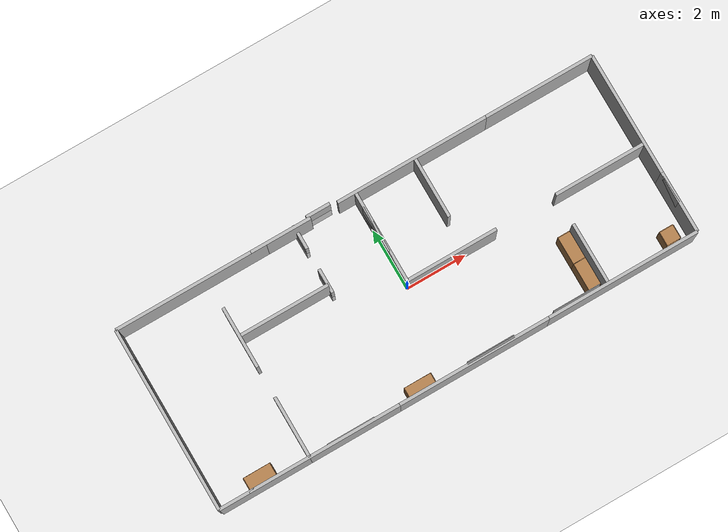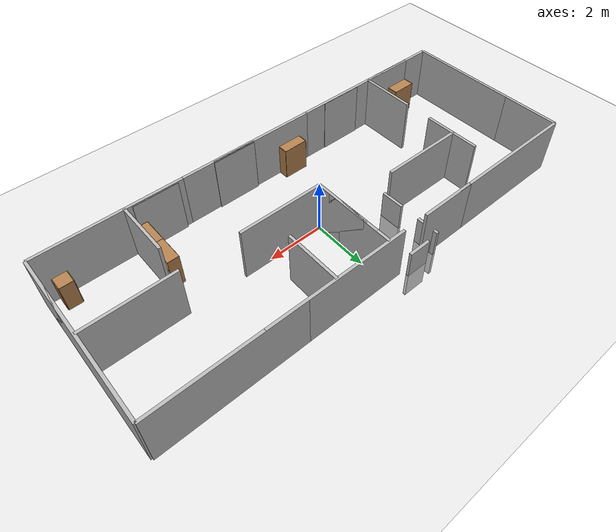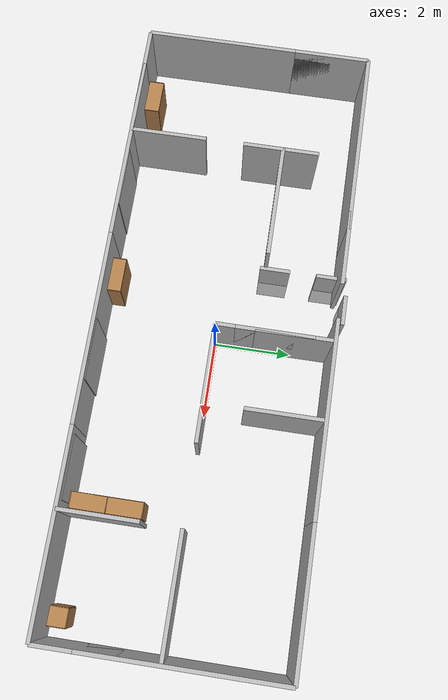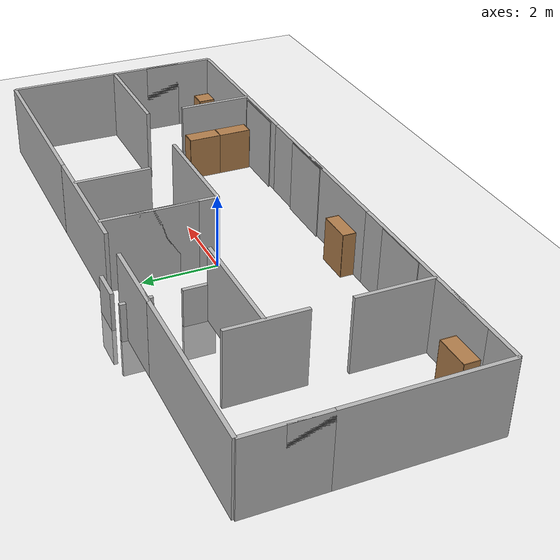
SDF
<sdf version="1.7">
 <world name="default">
  <light name="sun" type="directional">
   <pose>0 0 10 0 -0 0</pose>
   <diffuse>0.8 0.8 0.8 1</diffuse>
   <specular>0.2 0.2 0.2 1</specular>
   <attenuation>
    <range>1000</range>
    <constant>0.9</constant>
    <linear>0.01</linear>
    <quadratic>0.001</quadratic>
   </attenuation>
   <direction>-0.5 0.1 -0.9</direction>
   <spot><inner_angle>0</inner_angle><outer_angle>0</outer_angle><falloff>0</falloff></spot>
  </light>
  <model name="ground_plane">
   <static>1</static>
   <link name="link">
    <collision name="collision">
     <geometry><plane><normal>0 0 1</normal><size>100 100</size></plane></geometry>
     <surface>
      <contact><collide_bitmask>65535</collide_bitmask></contact>
      <friction><ode><mu>100</mu><mu2>50</mu2></ode></friction>
     </surface>
    </collision>
    <visual name="visual">
     <cast_shadows>0</cast_shadows>
     <geometry><plane><normal>0 0 1</normal><size>1 1</size></plane></geometry>
     <material>
      <script><uri>file://media/materials/scripts/gazebo.material</uri><name>Gazebo/Grey</name></script>
     </material>
    </visual>
   </link>
  </model>
  <gravity>0 0 -9.8</gravity>
  <magnetic_field>6e-06 2.3e-05 -4.2e-05</magnetic_field>
  <atmosphere type="adiabatic"/>
  <physics type="ode">
   <max_step_size>0.001</max_step_size>
   <real_time_factor>1</real_time_factor>
   <real_time_update_rate>1000</real_time_update_rate>
  </physics>
  <scene><ambient>0.4 0.4 0.4 1</ambient><background>0.7 0.7 0.7 1</background><shadows>1</shadows></scene>
  <audio><device>default</device></audio>
  <spherical_coordinates>
   <surface_model>EARTH_WGS84</surface_model>
   <latitude_deg>0</latitude_deg>
   <longitude_deg>0</longitude_deg>
   <elevation>0</elevation>
   <heading_deg>0</heading_deg>
  </spherical_coordinates>
  <model name="Bookshelf">
   <static>1</static>
   <link name="link">
    <inertial><mass>1</mass></inertial>
    <collision name="back">
     <pose>0 0.005 0.6 0 -0 0</pose>
     <geometry><box><size>0.9 0.01 1.2</size></box></geometry>
    </collision>
    <visual name="visual1">
     <pose>0 0.005 0.6 0 -0 0</pose>
     <geometry><box><size>0.9 0.01 1.2</size></box></geometry>
     <material>
      <diffuse>1 1 1 1</diffuse>
      <script><uri>file://media/materials/scripts/gazebo.material</uri><name>Gazebo/Wood</name></script>
      <pbr>
       <metal>
        <albedo_map>https://fuel.ignitionrobotics.org/1.0/openrobotics/models/bookshelf/3/files/bookshelf_diffuse.jpg</albedo_map>
       </metal>
      </pbr>
     </material>
    </visual>
    <collision name="left_side">
     <pose>0.45 -0.195 0.6 0 -0 0</pose>
     <geometry><box><size>0.02 0.4 1.2</size></box></geometry>
    </collision>
    <visual name="visual2">
     <pose>0.45 -0.195 0.6 0 -0 0</pose>
     <geometry><box><size>0.02 0.4 1.2</size></box></geometry>
     <material>
      <diffuse>1 1 1 1</diffuse>
      <script><uri>file://media/materials/scripts/gazebo.material</uri><name>Gazebo/Wood</name></script>
      <pbr>
       <metal>
        <albedo_map>https://fuel.ignitionrobotics.org/1.0/openrobotics/models/bookshelf/3/files/bookshelf_diffuse.jpg</albedo_map>
       </metal>
      </pbr>
     </material>
    </visual>
    <collision name="right_side">
     <pose>-0.45 -0.195 0.6 0 -0 0</pose>
     <geometry><box><size>0.02 0.4 1.2</size></box></geometry>
    </collision>
    <visual name="visual3">
     <pose>-0.45 -0.195 0.6 0 -0 0</pose>
     <geometry><box><size>0.02 0.4 1.2</size></box></geometry>
     <material>
      <diffuse>1 1 1 1</diffuse>
      <script><uri>file://media/materials/scripts/gazebo.material</uri><name>Gazebo/Wood</name></script>
      <pbr>
       <metal>
        <albedo_map>https://fuel.ignitionrobotics.org/1.0/openrobotics/models/bookshelf/3/files/bookshelf_diffuse.jpg</albedo_map>
       </metal>
      </pbr>
     </material>
    </visual>
    <collision name="bottom">
     <pose>0 -0.195 0.03 0 -0 0</pose>
     <geometry><box><size>0.88 0.4 0.06</size></box></geometry>
    </collision>
    <visual name="visual4">
     <pose>0 -0.195 0.03 0 -0 0</pose>
     <geometry><box><size>0.88 0.4 0.06</size></box></geometry>
     <material>
      <diffuse>1 1 1 1</diffuse>
      <script><uri>file://media/materials/scripts/gazebo.material</uri><name>Gazebo/Wood</name></script>
      <pbr>
       <metal>
        <albedo_map>https://fuel.ignitionrobotics.org/1.0/openrobotics/models/bookshelf/3/files/bookshelf_diffuse.jpg</albedo_map>
       </metal>
      </pbr>
     </material>
    </visual>
    <collision name="top">
     <pose>0 -0.195 1.19 0 -0 0</pose>
     <geometry><box><size>0.88 0.4 0.02</size></box></geometry>
    </collision>
    <visual name="visual5">
     <pose>0 -0.195 1.19 0 -0 0</pose>
     <geometry><box><size>0.88 0.4 0.02</size></box></geometry>
     <material>
      <diffuse>1 1 1 1</diffuse>
      <script><uri>file://media/materials/scripts/gazebo.material</uri><name>Gazebo/Wood</name></script>
      <pbr>
       <metal>
        <albedo_map>https://fuel.ignitionrobotics.org/1.0/openrobotics/models/bookshelf/3/files/bookshelf_diffuse.jpg</albedo_map>
       </metal>
      </pbr>
     </material>
    </visual>
    <collision name="low_shelf">
     <pose>0 -0.195 0.43 0 -0 0</pose>
     <geometry><box><size>0.88 0.4 0.02</size></box></geometry>
    </collision>
    <visual name="visual6">
     <pose>0 -0.195 0.43 0 -0 0</pose>
     <geometry><box><size>0.88 0.4 0.02</size></box></geometry>
     <material>
      <diffuse>1 1 1 1</diffuse>
      <script><uri>file://media/materials/scripts/gazebo.material</uri><name>Gazebo/Wood</name></script>
      <pbr>
       <metal>
        <albedo_map>https://fuel.ignitionrobotics.org/1.0/openrobotics/models/bookshelf/3/files/bookshelf_diffuse.jpg</albedo_map>
       </metal>
      </pbr>
     </material>
    </visual>
    <collision name="high_shelf">
     <pose>0 -0.195 0.8 0 -0 0</pose>
     <geometry><box><size>0.88 0.4 0.02</size></box></geometry>
    </collision>
    <visual name="visual7">
     <pose>0 -0.195 0.8 0 -0 0</pose>
     <geometry><box><size>0.88 0.4 0.02</size></box></geometry>
     <material>
      <diffuse>1 1 1 1</diffuse>
      <script><uri>file://media/materials/scripts/gazebo.material</uri><name>Gazebo/Wood</name></script>
      <pbr>
       <metal>
        <albedo_map>https://fuel.ignitionrobotics.org/1.0/openrobotics/models/bookshelf/3/files/bookshelf_diffuse.jpg</albedo_map>
       </metal>
      </pbr>
     </material>
    </visual>
   </link>
   <pose>4.5 -1.5 0 0 -0 1.5707</pose>
  </model>
  <model name="cabinet">
   <static>1</static>
   <link name="cabinet_bottom_plate">
    <inertial>
     <pose>0 0 -1 0 -0 0</pose>
     <inertia><ixx>2.05</ixx><ixy>0</ixy><ixz>0</ixz><iyy>2.05</iyy><iyz>0</iyz><izz>2.05</izz></inertia>
     <mass>25</mass>
    </inertial>
    <collision name="cabinet_bottom_plate_geom">
     <pose>0 0 0.01 0 -0 0</pose>
     <geometry><box><size>0.45 0.45 0.02</size></box></geometry>
    </collision>
    <visual name="cabinet_bottom_plate_geom_visual">
     <pose>0 0 0.01 0 -0 0</pose>
     <geometry><box><size>0.45 0.45 0.02</size></box></geometry>
     <material>
      <script><uri>file://media/materials/scripts/gazebo.material</uri><name>Gazebo/Wood</name></script>
     </material>
    </visual>
    <collision name="cabinet_bottom_plate_geom_cabinet_back_plate">
     <pose>0.235 0 0.51 0 -0 0</pose>
     <geometry><box><size>0.02 0.45 1.02</size></box></geometry>
    </collision>
    <visual name="cabinet_bottom_plate_geom_cabinet_back_plate_visual">
     <pose>0.235 0 0.51 0 -0 0</pose>
     <geometry><box><size>0.02 0.45 1.02</size></box></geometry>
     <material>
      <script><uri>file://media/materials/scripts/gazebo.material</uri><name>Gazebo/Wood</name></script>
     </material>
    </visual>
    <collision name="cabinet_bottom_plate_geom_cabinet_left_plate">
     <pose>0 0.235 0.51 0 -0 0</pose>
     <geometry><box><size>0.45 0.02 1.02</size></box></geometry>
    </collision>
    <visual name="cabinet_bottom_plate_geom_cabinet_left_plate_visual">
     <pose>0 0.235 0.51 0 -0 0</pose>
     <geometry><box><size>0.45 0.02 1.02</size></box></geometry>
     <material>
      <script><uri>file://media/materials/scripts/gazebo.material</uri><name>Gazebo/Wood</name></script>
     </material>
    </visual>
    <collision name="cabinet_bottom_plate_geom_cabinet_middle_plate">
     <pose>0 0 0.51 0 -0 0</pose>
     <geometry><box><size>0.45 0.45 0.02</size></box></geometry>
    </collision>
    <visual name="cabinet_bottom_plate_geom_cabinet_middle_plate_visual">
     <pose>0 0 0.51 0 -0 0</pose>
     <geometry><box><size>0.45 0.45 0.02</size></box></geometry>
     <material>
      <script><uri>file://media/materials/scripts/gazebo.material</uri><name>Gazebo/Wood</name></script>
     </material>
    </visual>
    <collision name="cabinet_bottom_plate_geom_cabinet_right_plate">
     <pose>0 -0.235 0.51 0 -0 0</pose>
     <geometry><box><size>0.45 0.02 1.02</size></box></geometry>
    </collision>
    <visual name="cabinet_bottom_plate_geom_cabinet_right_plate_visual">
     <pose>0 -0.235 0.51 0 -0 0</pose>
     <geometry><box><size>0.45 0.02 1.02</size></box></geometry>
     <material>
      <script><uri>file://media/materials/scripts/gazebo.material</uri><name>Gazebo/Wood</name></script>
     </material>
    </visual>
    <collision name="cabinet_bottom_plate_geom_cabinet_top_plate">
     <pose>0 0 1.01 0 -0 0</pose>
     <geometry><box><size>0.45 0.45 0.02</size></box></geometry>
    </collision>
    <visual name="cabinet_bottom_plate_geom_cabinet_top_plate_visual">
     <pose>0 0 1.01 0 -0 0</pose>
     <geometry><box><size>0.45 0.45 0.02</size></box></geometry>
     <material>
      <script><uri>file://media/materials/scripts/gazebo.material</uri><name>Gazebo/Wood</name></script>
     </material>
    </visual>
   </link>
   <pose>7.39856 -2.62744 0 0 -0 1.5707</pose>
  </model>
  <model name="living_room"><static>0</static><pose>-1.83596 1.40391 0 0 -0 0</pose></model>
  <model name="room_wall_2x5_0">
   <link name="link">
    <visual name="visual">
     <geometry><box><size>0.1 5 2</size></box></geometry>
     <material>
      <script>
       <uri>https://fuel.ignitionrobotics.org/1.0/makerspet/models/room_wall_2x5m/1/files/material/script</uri>
       <uri>https://fuel.ignitionrobotics.org/1.0/makerspet/models/room_wall_2x5m/1/files/material/textures</uri>
       <name>Custom/room_wall_2x5</name>
      </script>
     </material>
    </visual>
    <collision name="collision"><geometry><box><size>0.1 5 2</size></box></geometry></collision>
   </link>
   <static>1</static>
   <pose>8 0.5 1 0 -0 0</pose>
  </model>
  <model name="room_wall_2x5_1">
   <link name="link">
    <visual name="visual">
     <geometry><box><size>0.1 5 2</size></box></geometry>
     <material>
      <script>
       <uri>https://fuel.ignitionrobotics.org/1.0/makerspet/models/room_wall_2x5m/1/files/material/script</uri>
       <uri>https://fuel.ignitionrobotics.org/1.0/makerspet/models/room_wall_2x5m/1/files/material/textures</uri>
       <name>Custom/room_wall_2x5</name>
      </script>
     </material>
    </visual>
    <collision name="collision"><geometry><box><size>0.1 5 2</size></box></geometry></collision>
   </link>
   <static>1</static>
   <pose>5.5 -3 1 0 -0 1.5707</pose>
  </model>
  <model name="window_curtains_0">
   <link name="link">
    <visual name="visual">
     <geometry><box><size>0.02 1.5676 2</size></box></geometry>
     <material>
      <script>
       <uri>https://fuel.ignitionrobotics.org/1.0/makerspet/models/window_curtains/1/files/material/script</uri>
       <uri>https://fuel.ignitionrobotics.org/1.0/makerspet/models/window_curtains/1/files/material/textures</uri>
       <name>Custom/window_curtains</name>
      </script>
      <emissive>0 1 0 1</emissive>
     </material>
    </visual>
   </link>
   <static>1</static>
   <pose>4 -2.9 1 0 -0 1.5707</pose>
  </model>
  <model name="room_wall_2x5_2_clone">
   <link name="link">
    <visual name="visual">
     <geometry><box><size>0.1 5 2</size></box></geometry>
     <material>
      <script>
       <uri>https://fuel.ignitionrobotics.org/1.0/makerspet/models/room_wall_2x5m/1/files/material/script</uri>
       <uri>https://fuel.ignitionrobotics.org/1.0/makerspet/models/room_wall_2x5m/1/files/material/textures</uri>
       <name>Custom/room_wall_2x5</name>
      </script>
     </material>
    </visual>
    <collision name="collision"><geometry><box><size>0.1 5 2</size></box></geometry></collision>
   </link>
   <static>1</static>
   <pose>5.5 3 1 0 -0 1.5707</pose>
  </model>
  <model name="room_wall_2x5_2_clone_clone">
   <link name="link">
    <visual name="visual">
     <geometry><box><size>0.1 5 2</size></box></geometry>
     <material>
      <script>
       <uri>https://fuel.ignitionrobotics.org/1.0/makerspet/models/room_wall_2x5m/1/files/material/script</uri>
       <uri>https://fuel.ignitionrobotics.org/1.0/makerspet/models/room_wall_2x5m/1/files/material/textures</uri>
       <name>Custom/room_wall_2x5</name>
      </script>
     </material>
    </visual>
    <collision name="collision"><geometry><box><size>0.1 5 2</size></box></geometry></collision>
   </link>
   <static>1</static>
   <pose>1.90291 2.99986 1 0 -0 1.5707</pose>
  </model>
  <model name="door_08x2m">
   <link name="link">
    <visual name="visual">
     <geometry><box><size>0.1 0.8 2</size></box></geometry>
     <material>
      <script>
       <uri>https://fuel.gazebosim.org/1.0/makerspet/models/door_08x2m/1/files/material/script</uri>
       <uri>https://fuel.gazebosim.org/1.0/makerspet/models/door_08x2m/1/files/material/textures</uri>
       <name>Custom/door_08x2m</name>
      </script>
     </material>
    </visual>
   </link>
   <static>1</static>
   <pose>-1.15523 3.22478 0 0 -0 1.5707</pose>
  </model>
  <model name="room_wall_2x2">
   <link name="link">
    <visual name="visual">
     <geometry><box><size>0.1 2 2</size></box></geometry>
     <material>
      <script>
       <uri>https://fuel.ignitionrobotics.org/1.0/makerspet/models/room_wall_2x5m/1/files/material/script</uri>
       <uri>https://fuel.ignitionrobotics.org/1.0/makerspet/models/room_wall_2x5m/1/files/material/textures</uri>
       <name>Custom/room_wall_2x5</name>
      </script>
     </material>
    </visual>
    <collision name="collision"><geometry><box><size>0.1 2 2</size></box></geometry></collision>
   </link>
   <static>1</static>
   <pose>0 1 1 0 -0 0</pose>
  </model>
  <model name="room_wall_2x2_clone_clone_clone">
   <link name="link">
    <visual name="visual">
     <geometry><box><size>0.1 3 2</size></box></geometry>
     <material>
      <script>
       <uri>https://fuel.ignitionrobotics.org/1.0/makerspet/models/room_wall_2x5m/1/files/material/script</uri>
       <uri>https://fuel.ignitionrobotics.org/1.0/makerspet/models/room_wall_2x5m/1/files/material/textures</uri>
       <name>Custom/room_wall_2x5</name>
      </script>
     </material>
    </visual>
    <collision name="collision"><geometry><box><size>0.1 3 2</size></box></geometry></collision>
   </link>
   <static>1</static>
   <pose>-3.53585 1.04842 1 0 -0 1.5707</pose>
  </model>
  <model name="Bookshelf_clone">
   <static>1</static>
   <link name="link">
    <inertial><mass>1</mass></inertial>
    <collision name="back">
     <pose>0 0.005 0.6 0 -0 0</pose>
     <geometry><box><size>0.9 0.01 1.2</size></box></geometry>
    </collision>
    <visual name="visual1">
     <pose>0 0.005 0.6 0 -0 0</pose>
     <geometry><box><size>0.9 0.01 1.2</size></box></geometry>
     <material>
      <diffuse>1 1 1 1</diffuse>
      <script><uri>file://media/materials/scripts/gazebo.material</uri><name>Gazebo/Wood</name></script>
      <pbr>
       <metal>
        <albedo_map>https://fuel.ignitionrobotics.org/1.0/openrobotics/models/bookshelf/3/files/bookshelf_diffuse.jpg</albedo_map>
       </metal>
      </pbr>
     </material>
    </visual>
    <collision name="left_side">
     <pose>0.45 -0.195 0.6 0 -0 0</pose>
     <geometry><box><size>0.02 0.4 1.2</size></box></geometry>
    </collision>
    <visual name="visual2">
     <pose>0.45 -0.195 0.6 0 -0 0</pose>
     <geometry><box><size>0.02 0.4 1.2</size></box></geometry>
     <material>
      <diffuse>1 1 1 1</diffuse>
      <script><uri>file://media/materials/scripts/gazebo.material</uri><name>Gazebo/Wood</name></script>
      <pbr>
       <metal>
        <albedo_map>https://fuel.ignitionrobotics.org/1.0/openrobotics/models/bookshelf/3/files/bookshelf_diffuse.jpg</albedo_map>
       </metal>
      </pbr>
     </material>
    </visual>
    <collision name="right_side">
     <pose>-0.45 -0.195 0.6 0 -0 0</pose>
     <geometry><box><size>0.02 0.4 1.2</size></box></geometry>
    </collision>
    <visual name="visual3">
     <pose>-0.45 -0.195 0.6 0 -0 0</pose>
     <geometry><box><size>0.02 0.4 1.2</size></box></geometry>
     <material>
      <diffuse>1 1 1 1</diffuse>
      <script><uri>file://media/materials/scripts/gazebo.material</uri><name>Gazebo/Wood</name></script>
      <pbr>
       <metal>
        <albedo_map>https://fuel.ignitionrobotics.org/1.0/openrobotics/models/bookshelf/3/files/bookshelf_diffuse.jpg</albedo_map>
       </metal>
      </pbr>
     </material>
    </visual>
    <collision name="bottom">
     <pose>0 -0.195 0.03 0 -0 0</pose>
     <geometry><box><size>0.88 0.4 0.06</size></box></geometry>
    </collision>
    <visual name="visual4">
     <pose>0 -0.195 0.03 0 -0 0</pose>
     <geometry><box><size>0.88 0.4 0.06</size></box></geometry>
     <material>
      <diffuse>1 1 1 1</diffuse>
      <script><uri>file://media/materials/scripts/gazebo.material</uri><name>Gazebo/Wood</name></script>
      <pbr>
       <metal>
        <albedo_map>https://fuel.ignitionrobotics.org/1.0/openrobotics/models/bookshelf/3/files/bookshelf_diffuse.jpg</albedo_map>
       </metal>
      </pbr>
     </material>
    </visual>
    <collision name="top">
     <pose>0 -0.195 1.19 0 -0 0</pose>
     <geometry><box><size>0.88 0.4 0.02</size></box></geometry>
    </collision>
    <visual name="visual5">
     <pose>0 -0.195 1.19 0 -0 0</pose>
     <geometry><box><size>0.88 0.4 0.02</size></box></geometry>
     <material>
      <diffuse>1 1 1 1</diffuse>
      <script><uri>file://media/materials/scripts/gazebo.material</uri><name>Gazebo/Wood</name></script>
      <pbr>
       <metal>
        <albedo_map>https://fuel.ignitionrobotics.org/1.0/openrobotics/models/bookshelf/3/files/bookshelf_diffuse.jpg</albedo_map>
       </metal>
      </pbr>
     </material>
    </visual>
    <collision name="low_shelf">
     <pose>0 -0.195 0.43 0 -0 0</pose>
     <geometry><box><size>0.88 0.4 0.02</size></box></geometry>
    </collision>
    <visual name="visual6">
     <pose>0 -0.195 0.43 0 -0 0</pose>
     <geometry><box><size>0.88 0.4 0.02</size></box></geometry>
     <material>
      <diffuse>1 1 1 1</diffuse>
      <script><uri>file://media/materials/scripts/gazebo.material</uri><name>Gazebo/Wood</name></script>
      <pbr>
       <metal>
        <albedo_map>https://fuel.ignitionrobotics.org/1.0/openrobotics/models/bookshelf/3/files/bookshelf_diffuse.jpg</albedo_map>
       </metal>
      </pbr>
     </material>
    </visual>
    <collision name="high_shelf">
     <pose>0 -0.195 0.8 0 -0 0</pose>
     <geometry><box><size>0.88 0.4 0.02</size></box></geometry>
    </collision>
    <visual name="visual7">
     <pose>0 -0.195 0.8 0 -0 0</pose>
     <geometry><box><size>0.88 0.4 0.02</size></box></geometry>
     <material>
      <diffuse>1 1 1 1</diffuse>
      <script><uri>file://media/materials/scripts/gazebo.material</uri><name>Gazebo/Wood</name></script>
      <pbr>
       <metal>
        <albedo_map>https://fuel.ignitionrobotics.org/1.0/openrobotics/models/bookshelf/3/files/bookshelf_diffuse.jpg</albedo_map>
       </metal>
      </pbr>
     </material>
    </visual>
   </link>
   <pose>-1.1725 -2.60137 0 0 -0 0</pose>
  </model>
  <model name="Bookshelf_clone_0">
   <static>1</static>
   <link name="link">
    <inertial><mass>1</mass></inertial>
    <collision name="back">
     <pose>0 0.005 0.6 0 -0 0</pose>
     <geometry><box><size>0.9 0.01 1.2</size></box></geometry>
    </collision>
    <visual name="visual1">
     <pose>0 0.005 0.6 0 -0 0</pose>
     <geometry><box><size>0.9 0.01 1.2</size></box></geometry>
     <material>
      <diffuse>1 1 1 1</diffuse>
      <script><uri>file://media/materials/scripts/gazebo.material</uri><name>Gazebo/Wood</name></script>
      <pbr>
       <metal>
        <albedo_map>https://fuel.ignitionrobotics.org/1.0/openrobotics/models/bookshelf/3/files/bookshelf_diffuse.jpg</albedo_map>
       </metal>
      </pbr>
     </material>
    </visual>
    <collision name="left_side">
     <pose>0.45 -0.195 0.6 0 -0 0</pose>
     <geometry><box><size>0.02 0.4 1.2</size></box></geometry>
    </collision>
    <visual name="visual2">
     <pose>0.45 -0.195 0.6 0 -0 0</pose>
     <geometry><box><size>0.02 0.4 1.2</size></box></geometry>
     <material>
      <diffuse>1 1 1 1</diffuse>
      <script><uri>file://media/materials/scripts/gazebo.material</uri><name>Gazebo/Wood</name></script>
      <pbr>
       <metal>
        <albedo_map>https://fuel.ignitionrobotics.org/1.0/openrobotics/models/bookshelf/3/files/bookshelf_diffuse.jpg</albedo_map>
       </metal>
      </pbr>
     </material>
    </visual>
    <collision name="right_side">
     <pose>-0.45 -0.195 0.6 0 -0 0</pose>
     <geometry><box><size>0.02 0.4 1.2</size></box></geometry>
    </collision>
    <visual name="visual3">
     <pose>-0.45 -0.195 0.6 0 -0 0</pose>
     <geometry><box><size>0.02 0.4 1.2</size></box></geometry>
     <material>
      <diffuse>1 1 1 1</diffuse>
      <script><uri>file://media/materials/scripts/gazebo.material</uri><name>Gazebo/Wood</name></script>
      <pbr>
       <metal>
        <albedo_map>https://fuel.ignitionrobotics.org/1.0/openrobotics/models/bookshelf/3/files/bookshelf_diffuse.jpg</albedo_map>
       </metal>
      </pbr>
     </material>
    </visual>
    <collision name="bottom">
     <pose>0 -0.195 0.03 0 -0 0</pose>
     <geometry><box><size>0.88 0.4 0.06</size></box></geometry>
    </collision>
    <visual name="visual4">
     <pose>0 -0.195 0.03 0 -0 0</pose>
     <geometry><box><size>0.88 0.4 0.06</size></box></geometry>
     <material>
      <diffuse>1 1 1 1</diffuse>
      <script><uri>file://media/materials/scripts/gazebo.material</uri><name>Gazebo/Wood</name></script>
      <pbr>
       <metal>
        <albedo_map>https://fuel.ignitionrobotics.org/1.0/openrobotics/models/bookshelf/3/files/bookshelf_diffuse.jpg</albedo_map>
       </metal>
      </pbr>
     </material>
    </visual>
    <collision name="top">
     <pose>0 -0.195 1.19 0 -0 0</pose>
     <geometry><box><size>0.88 0.4 0.02</size></box></geometry>
    </collision>
    <visual name="visual5">
     <pose>0 -0.195 1.19 0 -0 0</pose>
     <geometry><box><size>0.88 0.4 0.02</size></box></geometry>
     <material>
      <diffuse>1 1 1 1</diffuse>
      <script><uri>file://media/materials/scripts/gazebo.material</uri><name>Gazebo/Wood</name></script>
      <pbr>
       <metal>
        <albedo_map>https://fuel.ignitionrobotics.org/1.0/openrobotics/models/bookshelf/3/files/bookshelf_diffuse.jpg</albedo_map>
       </metal>
      </pbr>
     </material>
    </visual>
    <collision name="low_shelf">
     <pose>0 -0.195 0.43 0 -0 0</pose>
     <geometry><box><size>0.88 0.4 0.02</size></box></geometry>
    </collision>
    <visual name="visual6">
     <pose>0 -0.195 0.43 0 -0 0</pose>
     <geometry><box><size>0.88 0.4 0.02</size></box></geometry>
     <material>
      <diffuse>1 1 1 1</diffuse>
      <script><uri>file://media/materials/scripts/gazebo.material</uri><name>Gazebo/Wood</name></script>
      <pbr>
       <metal>
        <albedo_map>https://fuel.ignitionrobotics.org/1.0/openrobotics/models/bookshelf/3/files/bookshelf_diffuse.jpg</albedo_map>
       </metal>
      </pbr>
     </material>
    </visual>
    <collision name="high_shelf">
     <pose>0 -0.195 0.8 0 -0 0</pose>
     <geometry><box><size>0.88 0.4 0.02</size></box></geometry>
    </collision>
    <visual name="visual7">
     <pose>0 -0.195 0.8 0 -0 0</pose>
     <geometry><box><size>0.88 0.4 0.02</size></box></geometry>
     <material>
      <diffuse>1 1 1 1</diffuse>
      <script><uri>file://media/materials/scripts/gazebo.material</uri><name>Gazebo/Wood</name></script>
      <pbr>
       <metal>
        <albedo_map>https://fuel.ignitionrobotics.org/1.0/openrobotics/models/bookshelf/3/files/bookshelf_diffuse.jpg</albedo_map>
       </metal>
      </pbr>
     </material>
    </visual>
   </link>
   <pose>-6.52231 -2.51257 0 0 -0 0</pose>
  </model>
  <model name="room_wall_2x2_clone_0">
   <link name="link">
    <visual name="visual">
     <geometry><box><size>0.1 2 2</size></box></geometry>
     <material>
      <script>
       <uri>https://fuel.ignitionrobotics.org/1.0/makerspet/models/room_wall_2x5m/1/files/material/script</uri>
       <uri>https://fuel.ignitionrobotics.org/1.0/makerspet/models/room_wall_2x5m/1/files/material/textures</uri>
       <name>Custom/room_wall_2x5</name>
      </script>
     </material>
    </visual>
    <collision name="collision"><geometry><box><size>0.1 2 2</size></box></geometry></collision>
   </link>
   <static>1</static>
   <pose>-2.5 3 1 0 -0 1.5707</pose>
  </model>
  <model name="room_wall_2x5_2_clone_clone_clone_0_clone">
   <link name="link">
    <visual name="visual">
     <geometry><box><size>0.1 5 2</size></box></geometry>
     <material>
      <script>
       <uri>https://fuel.ignitionrobotics.org/1.0/makerspet/models/room_wall_2x5m/1/files/material/script</uri>
       <uri>https://fuel.ignitionrobotics.org/1.0/makerspet/models/room_wall_2x5m/1/files/material/textures</uri>
       <name>Custom/room_wall_2x5</name>
      </script>
     </material>
    </visual>
    <collision name="collision"><geometry><box><size>0.1 5 2</size></box></geometry></collision>
   </link>
   <static>1</static>
   <pose>-8 -0.5 1 0 -0 0</pose>
  </model>
  <model name="room_wall_2x2_clone_0_clone_clone">
   <link name="link">
    <visual name="visual">
     <geometry><box><size>0.1 2 2</size></box></geometry>
     <material>
      <script>
       <uri>https://fuel.ignitionrobotics.org/1.0/makerspet/models/room_wall_2x5m/1/files/material/script</uri>
       <uri>https://fuel.ignitionrobotics.org/1.0/makerspet/models/room_wall_2x5m/1/files/material/textures</uri>
       <name>Custom/room_wall_2x5</name>
      </script>
     </material>
    </visual>
    <collision name="collision"><geometry><box><size>0.1 2 2</size></box></geometry></collision>
   </link>
   <static>1</static>
   <pose>5 -2 1 0 -0 0</pose>
  </model>
  <model name="Bookshelf_clone_1_clone">
   <static>1</static>
   <link name="link">
    <inertial><mass>1</mass></inertial>
    <collision name="back">
     <pose>0 0.005 0.6 0 -0 0</pose>
     <geometry><box><size>0.9 0.01 1.2</size></box></geometry>
    </collision>
    <visual name="visual1">
     <pose>0 0.005 0.6 0 -0 0</pose>
     <geometry><box><size>0.9 0.01 1.2</size></box></geometry>
     <material>
      <diffuse>1 1 1 1</diffuse>
      <script><uri>file://media/materials/scripts/gazebo.material</uri><name>Gazebo/Wood</name></script>
      <pbr>
       <metal>
        <albedo_map>https://fuel.ignitionrobotics.org/1.0/openrobotics/models/bookshelf/3/files/bookshelf_diffuse.jpg</albedo_map>
       </metal>
      </pbr>
     </material>
    </visual>
    <collision name="left_side">
     <pose>0.45 -0.195 0.6 0 -0 0</pose>
     <geometry><box><size>0.02 0.4 1.2</size></box></geometry>
    </collision>
    <visual name="visual2">
     <pose>0.45 -0.195 0.6 0 -0 0</pose>
     <geometry><box><size>0.02 0.4 1.2</size></box></geometry>
     <material>
      <diffuse>1 1 1 1</diffuse>
      <script><uri>file://media/materials/scripts/gazebo.material</uri><name>Gazebo/Wood</name></script>
      <pbr>
       <metal>
        <albedo_map>https://fuel.ignitionrobotics.org/1.0/openrobotics/models/bookshelf/3/files/bookshelf_diffuse.jpg</albedo_map>
       </metal>
      </pbr>
     </material>
    </visual>
    <collision name="right_side">
     <pose>-0.45 -0.195 0.6 0 -0 0</pose>
     <geometry><box><size>0.02 0.4 1.2</size></box></geometry>
    </collision>
    <visual name="visual3">
     <pose>-0.45 -0.195 0.6 0 -0 0</pose>
     <geometry><box><size>0.02 0.4 1.2</size></box></geometry>
     <material>
      <diffuse>1 1 1 1</diffuse>
      <script><uri>file://media/materials/scripts/gazebo.material</uri><name>Gazebo/Wood</name></script>
      <pbr>
       <metal>
        <albedo_map>https://fuel.ignitionrobotics.org/1.0/openrobotics/models/bookshelf/3/files/bookshelf_diffuse.jpg</albedo_map>
       </metal>
      </pbr>
     </material>
    </visual>
    <collision name="bottom">
     <pose>0 -0.195 0.03 0 -0 0</pose>
     <geometry><box><size>0.88 0.4 0.06</size></box></geometry>
    </collision>
    <visual name="visual4">
     <pose>0 -0.195 0.03 0 -0 0</pose>
     <geometry><box><size>0.88 0.4 0.06</size></box></geometry>
     <material>
      <diffuse>1 1 1 1</diffuse>
      <script><uri>file://media/materials/scripts/gazebo.material</uri><name>Gazebo/Wood</name></script>
      <pbr>
       <metal>
        <albedo_map>https://fuel.ignitionrobotics.org/1.0/openrobotics/models/bookshelf/3/files/bookshelf_diffuse.jpg</albedo_map>
       </metal>
      </pbr>
     </material>
    </visual>
    <collision name="top">
     <pose>0 -0.195 1.19 0 -0 0</pose>
     <geometry><box><size>0.88 0.4 0.02</size></box></geometry>
    </collision>
    <visual name="visual5">
     <pose>0 -0.195 1.19 0 -0 0</pose>
     <geometry><box><size>0.88 0.4 0.02</size></box></geometry>
     <material>
      <diffuse>1 1 1 1</diffuse>
      <script><uri>file://media/materials/scripts/gazebo.material</uri><name>Gazebo/Wood</name></script>
      <pbr>
       <metal>
        <albedo_map>https://fuel.ignitionrobotics.org/1.0/openrobotics/models/bookshelf/3/files/bookshelf_diffuse.jpg</albedo_map>
       </metal>
      </pbr>
     </material>
    </visual>
    <collision name="low_shelf">
     <pose>0 -0.195 0.43 0 -0 0</pose>
     <geometry><box><size>0.88 0.4 0.02</size></box></geometry>
    </collision>
    <visual name="visual6">
     <pose>0 -0.195 0.43 0 -0 0</pose>
     <geometry><box><size>0.88 0.4 0.02</size></box></geometry>
     <material>
      <diffuse>1 1 1 1</diffuse>
      <script><uri>file://media/materials/scripts/gazebo.material</uri><name>Gazebo/Wood</name></script>
      <pbr>
       <metal>
        <albedo_map>https://fuel.ignitionrobotics.org/1.0/openrobotics/models/bookshelf/3/files/bookshelf_diffuse.jpg</albedo_map>
       </metal>
      </pbr>
     </material>
    </visual>
    <collision name="high_shelf">
     <pose>0 -0.195 0.8 0 -0 0</pose>
     <geometry><box><size>0.88 0.4 0.02</size></box></geometry>
    </collision>
    <visual name="visual7">
     <pose>0 -0.195 0.8 0 -0 0</pose>
     <geometry><box><size>0.88 0.4 0.02</size></box></geometry>
     <material>
      <diffuse>1 1 1 1</diffuse>
      <script><uri>file://media/materials/scripts/gazebo.material</uri><name>Gazebo/Wood</name></script>
      <pbr>
       <metal>
        <albedo_map>https://fuel.ignitionrobotics.org/1.0/openrobotics/models/bookshelf/3/files/bookshelf_diffuse.jpg</albedo_map>
       </metal>
      </pbr>
     </material>
    </visual>
   </link>
   <pose>4.5 -2.4 0 0 -0 1.5707</pose>
  </model>
  <model name="room_wall_2x5_1_clone">
   <link name="link">
    <visual name="visual">
     <geometry><box><size>0.1 5 2</size></box></geometry>
     <material>
      <script>
       <uri>https://fuel.ignitionrobotics.org/1.0/makerspet/models/room_wall_2x5m/1/files/material/script</uri>
       <uri>https://fuel.ignitionrobotics.org/1.0/makerspet/models/room_wall_2x5m/1/files/material/textures</uri>
       <name>Custom/room_wall_2x5</name>
      </script>
     </material>
    </visual>
    <collision name="collision"><geometry><box><size>0.1 5 2</size></box></geometry></collision>
   </link>
   <static>1</static>
   <pose>0.5 -3 1 0 -0 1.5707</pose>
  </model>
  <model name="room_wall_2x2_clone_clone_clone_clone">
   <link name="link">
    <visual name="visual">
     <geometry><box><size>0.1 3 2</size></box></geometry>
     <material>
      <script>
       <uri>https://fuel.ignitionrobotics.org/1.0/makerspet/models/room_wall_2x5m/1/files/material/script</uri>
       <uri>https://fuel.ignitionrobotics.org/1.0/makerspet/models/room_wall_2x5m/1/files/material/textures</uri>
       <name>Custom/room_wall_2x5</name>
      </script>
     </material>
    </visual>
    <collision name="collision"><geometry><box><size>0.1 3 2</size></box></geometry></collision>
   </link>
   <static>1</static>
   <pose>-6.5 -3 1 0 -0 1.5707</pose>
  </model>
  <model name="room_wall_2x2_clone_clone_clone_0_clone">
   <link name="link">
    <visual name="visual">
     <geometry><box><size>0.1 3 2</size></box></geometry>
     <material>
      <script>
       <uri>https://fuel.ignitionrobotics.org/1.0/makerspet/models/room_wall_2x5m/1/files/material/script</uri>
       <uri>https://fuel.ignitionrobotics.org/1.0/makerspet/models/room_wall_2x5m/1/files/material/textures</uri>
       <name>Custom/room_wall_2x5</name>
      </script>
     </material>
    </visual>
    <collision name="collision"><geometry><box><size>0.1 3 2</size></box></geometry></collision>
   </link>
   <static>1</static>
   <pose>1.5 0 1 0 -0 1.5707</pose>
  </model>
  <model name="room_wall_2x2_clone">
   <link name="link">
    <visual name="visual">
     <geometry><box><size>0.1 2 2</size></box></geometry>
     <material>
      <script>
       <uri>https://fuel.ignitionrobotics.org/1.0/makerspet/models/room_wall_2x5m/1/files/material/script</uri>
       <uri>https://fuel.ignitionrobotics.org/1.0/makerspet/models/room_wall_2x5m/1/files/material/textures</uri>
       <name>Custom/room_wall_2x5</name>
      </script>
     </material>
    </visual>
    <collision name="collision"><geometry><box><size>0.1 2 2</size></box></geometry></collision>
   </link>
   <static>1</static>
   <pose>0 1.5 1 0 -0 0</pose>
  </model>
  <model name="room_wall_2x2_clone_clone">
   <link name="link">
    <visual name="visual">
     <geometry><box><size>0.1 2 2</size></box></geometry>
     <material>
      <script>
       <uri>https://fuel.ignitionrobotics.org/1.0/makerspet/models/room_wall_2x5m/1/files/material/script</uri>
       <uri>https://fuel.ignitionrobotics.org/1.0/makerspet/models/room_wall_2x5m/1/files/material/textures</uri>
       <name>Custom/room_wall_2x5</name>
      </script>
     </material>
    </visual>
    <collision name="collision"><geometry><box><size>0.1 2 2</size></box></geometry></collision>
   </link>
   <static>1</static>
   <pose>2 2 1 0 -0 0</pose>
  </model>
  <model name="room_wall_2x2_clone_clone_clone_0_clone_clone_0">
   <link name="link">
    <visual name="visual">
     <geometry><box><size>0.1 3 2</size></box></geometry>
     <material>
      <script>
       <uri>https://fuel.ignitionrobotics.org/1.0/makerspet/models/room_wall_2x5m/1/files/material/script</uri>
       <uri>https://fuel.ignitionrobotics.org/1.0/makerspet/models/room_wall_2x5m/1/files/material/textures</uri>
       <name>Custom/room_wall_2x5</name>
      </script>
     </material>
    </visual>
    <collision name="collision"><geometry><box><size>0.1 3 2</size></box></geometry></collision>
   </link>
   <static>1</static>
   <pose>6.5 0 1 0 -0 1.5707</pose>
  </model>
  <model name="window_curtains_0_clone">
   <link name="link">
    <visual name="visual">
     <geometry><box><size>0.02 1.5676 2</size></box></geometry>
     <material>
      <script>
       <uri>https://fuel.ignitionrobotics.org/1.0/makerspet/models/window_curtains/1/files/material/script</uri>
       <uri>https://fuel.ignitionrobotics.org/1.0/makerspet/models/window_curtains/1/files/material/textures</uri>
       <name>Custom/window_curtains</name>
      </script>
      <emissive>0 1 0 1</emissive>
     </material>
    </visual>
   </link>
   <static>1</static>
   <pose>1.06839 -2.98579 1 0 -0 1.5707</pose>
  </model>
  <model name="window_curtains_0_clone_0">
   <link name="link">
    <visual name="visual">
     <geometry><box><size>0.02 1.5676 2</size></box></geometry>
     <material>
      <script>
       <uri>https://fuel.ignitionrobotics.org/1.0/makerspet/models/window_curtains/1/files/material/script</uri>
       <uri>https://fuel.ignitionrobotics.org/1.0/makerspet/models/window_curtains/1/files/material/textures</uri>
       <name>Custom/window_curtains</name>
      </script>
      <emissive>0 1 0 1</emissive>
     </material>
    </visual>
   </link>
   <static>1</static>
   <pose>1.0905 -2.91946 1 0 -0 1.5707</pose>
  </model>
  <model name="window_curtains_0_clone_1">
   <link name="link">
    <visual name="visual">
     <geometry><box><size>0.02 1.5676 2</size></box></geometry>
     <material>
      <script>
       <uri>https://fuel.ignitionrobotics.org/1.0/makerspet/models/window_curtains/1/files/material/script</uri>
       <uri>https://fuel.ignitionrobotics.org/1.0/makerspet/models/window_curtains/1/files/material/textures</uri>
       <name>Custom/window_curtains</name>
      </script>
      <emissive>0 1 0 1</emissive>
     </material>
    </visual>
   </link>
   <static>1</static>
   <pose>-3.59723 -2.94156 1 0 -0 1.5707</pose>
  </model>
  <model name="room_wall_2x5_1_clone_clone">
   <link name="link">
    <visual name="visual">
     <geometry><box><size>0.1 5 2</size></box></geometry>
     <material>
      <script>
       <uri>https://fuel.ignitionrobotics.org/1.0/makerspet/models/room_wall_2x5m/1/files/material/script</uri>
       <uri>https://fuel.ignitionrobotics.org/1.0/makerspet/models/room_wall_2x5m/1/files/material/textures</uri>
       <name>Custom/room_wall_2x5</name>
      </script>
     </material>
    </visual>
    <collision name="collision"><geometry><box><size>0.1 5 2</size></box></geometry></collision>
   </link>
   <static>1</static>
   <pose>-4.5 -3 1 0 -0 1.5707</pose>
  </model>
  <model name="room_wall_2x5_2_clone_clone_clone">
   <link name="link">
    <visual name="visual">
     <geometry><box><size>0.1 5 2</size></box></geometry>
     <material>
      <script>
       <uri>https://fuel.ignitionrobotics.org/1.0/makerspet/models/room_wall_2x5m/1/files/material/script</uri>
       <uri>https://fuel.ignitionrobotics.org/1.0/makerspet/models/room_wall_2x5m/1/files/material/textures</uri>
       <name>Custom/room_wall_2x5</name>
      </script>
     </material>
    </visual>
    <collision name="collision"><geometry><box><size>0.1 5 2</size></box></geometry></collision>
   </link>
   <static>1</static>
   <pose>-5.5 3 1 0 -0 1.5707</pose>
  </model>
  <model name="room_wall_2x2_clone_0_clone_clone_clone">
   <link name="link">
    <visual name="visual">
     <geometry><box><size>0.1 2 2</size></box></geometry>
     <material>
      <script>
       <uri>https://fuel.ignitionrobotics.org/1.0/makerspet/models/room_wall_2x5m/1/files/material/script</uri>
       <uri>https://fuel.ignitionrobotics.org/1.0/makerspet/models/room_wall_2x5m/1/files/material/textures</uri>
       <name>Custom/room_wall_2x5</name>
      </script>
     </material>
    </visual>
    <collision name="collision"><geometry><box><size>0.1 2 2</size></box></geometry></collision>
   </link>
   <static>1</static>
   <pose>8 -2 1 0 -0 0</pose>
  </model>
  <model name="room_wall_2x2_clone_0_clone_clone_clone_0">
   <link name="link">
    <visual name="visual">
     <geometry><box><size>0.1 2 2</size></box></geometry>
     <material>
      <script>
       <uri>https://fuel.ignitionrobotics.org/1.0/makerspet/models/room_wall_2x5m/1/files/material/script</uri>
       <uri>https://fuel.ignitionrobotics.org/1.0/makerspet/models/room_wall_2x5m/1/files/material/textures</uri>
       <name>Custom/room_wall_2x5</name>
      </script>
     </material>
    </visual>
    <collision name="collision"><geometry><box><size>0.1 2 2</size></box></geometry></collision>
   </link>
   <static>1</static>
   <pose>-5 -2 1 0 -0 0</pose>
  </model>
  <model name="room_wall_2x2_clone_0_clone_clone_clone_0_clone">
   <link name="link">
    <visual name="visual">
     <geometry><box><size>0.1 2 2</size></box></geometry>
     <material>
      <script>
       <uri>https://fuel.ignitionrobotics.org/1.0/makerspet/models/room_wall_2x5m/1/files/material/script</uri>
       <uri>https://fuel.ignitionrobotics.org/1.0/makerspet/models/room_wall_2x5m/1/files/material/textures</uri>
       <name>Custom/room_wall_2x5</name>
      </script>
     </material>
    </visual>
    <collision name="collision"><geometry><box><size>0.1 2 2</size></box></geometry></collision>
   </link>
   <static>1</static>
   <pose>-8 2 1 0 -0 0</pose>
  </model>
  <model name="room_wall_2x2_clone_clone_clone_1">
   <link name="link">
    <visual name="visual">
     <geometry><box><size>0.1 2 2</size></box></geometry>
     <material>
      <script>
       <uri>https://fuel.ignitionrobotics.org/1.0/makerspet/models/room_wall_2x5m/1/files/material/script</uri>
       <uri>https://fuel.ignitionrobotics.org/1.0/makerspet/models/room_wall_2x5m/1/files/material/textures</uri>
       <name>Custom/room_wall_2x5</name>
      </script>
     </material>
    </visual>
    <collision name="collision"><geometry><box><size>0.1 2 2</size></box></geometry></collision>
   </link>
   <static>1</static>
   <pose>0 2 1 0 -0 0</pose>
  </model>
  <model name="room_wall_2x2_clone_0_clone_clone_clone_0_clone_0">
   <link name="link">
    <visual name="visual">
     <geometry><box><size>0.1 2 2</size></box></geometry>
     <material>
      <script>
       <uri>https://fuel.ignitionrobotics.org/1.0/makerspet/models/room_wall_2x5m/1/files/material/script</uri>
       <uri>https://fuel.ignitionrobotics.org/1.0/makerspet/models/room_wall_2x5m/1/files/material/textures</uri>
       <name>Custom/room_wall_2x5</name>
      </script>
     </material>
    </visual>
    <collision name="collision"><geometry><box><size>0.1 2 2</size></box></geometry></collision>
   </link>
   <static>1</static>
   <pose>-5 1 1 0 -0 0</pose>
  </model>
  <model name="door_08x2m_clone">
   <link name="link">
    <visual name="visual">
     <geometry><box><size>0.1 0.8 2</size></box></geometry>
     <material>
      <script>
       <uri>https://fuel.gazebosim.org/1.0/makerspet/models/door_08x2m/1/files/material/script</uri>
       <uri>https://fuel.gazebosim.org/1.0/makerspet/models/door_08x2m/1/files/material/textures</uri>
       <name>Custom/door_08x2m</name>
      </script>
     </material>
    </visual>
   </link>
   <static>1</static>
   <pose>-2 1.3 0 0 -0 0</pose>
  </model>
  <model name="door_08x2m_clone_clone">
   <link name="link">
    <visual name="visual">
     <geometry><box><size>0.1 0.8 2</size></box></geometry>
     <material>
      <script>
       <uri>https://fuel.gazebosim.org/1.0/makerspet/models/door_08x2m/1/files/material/script</uri>
       <uri>https://fuel.gazebosim.org/1.0/makerspet/models/door_08x2m/1/files/material/textures</uri>
       <name>Custom/door_08x2m</name>
      </script>
     </material>
    </visual>
   </link>
   <static>1</static>
   <pose>-2 2.8 0 0 -0 0</pose>
  </model>
 </world>
</sdf>
